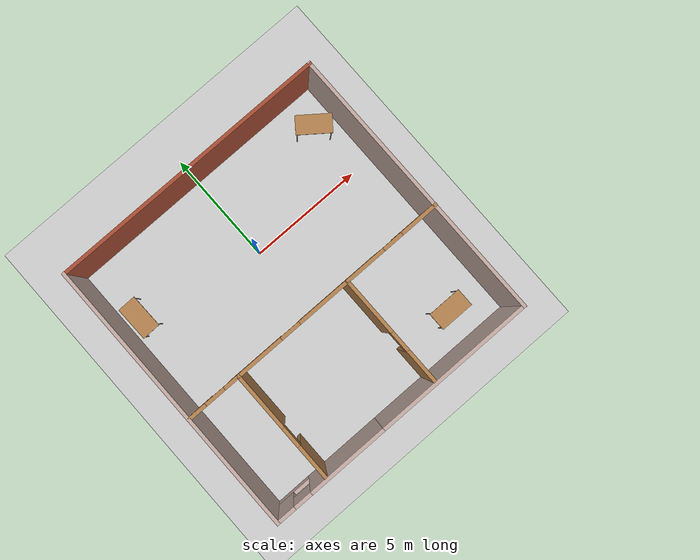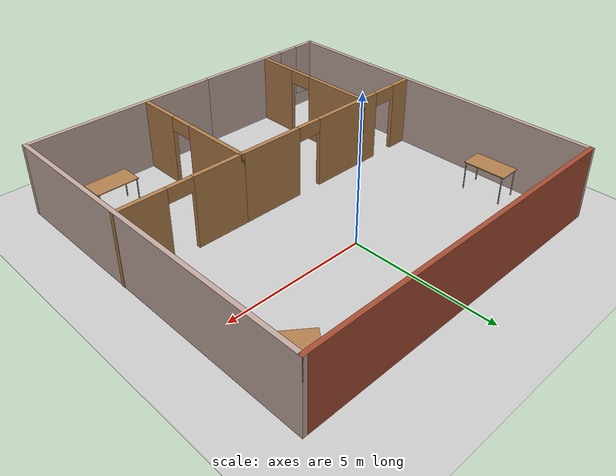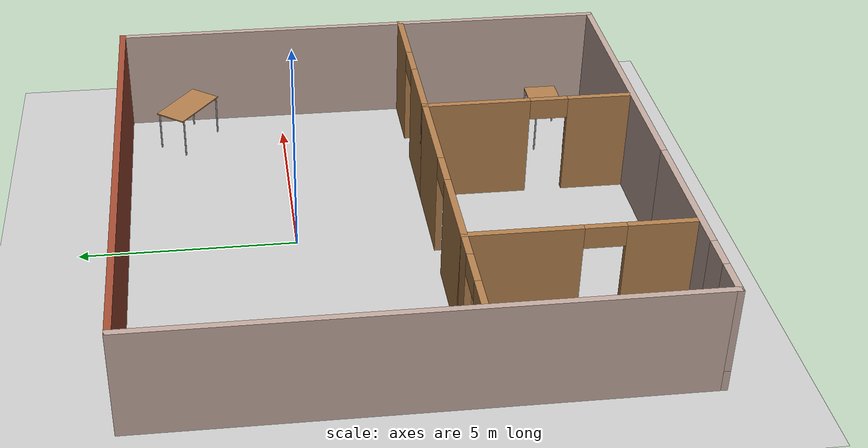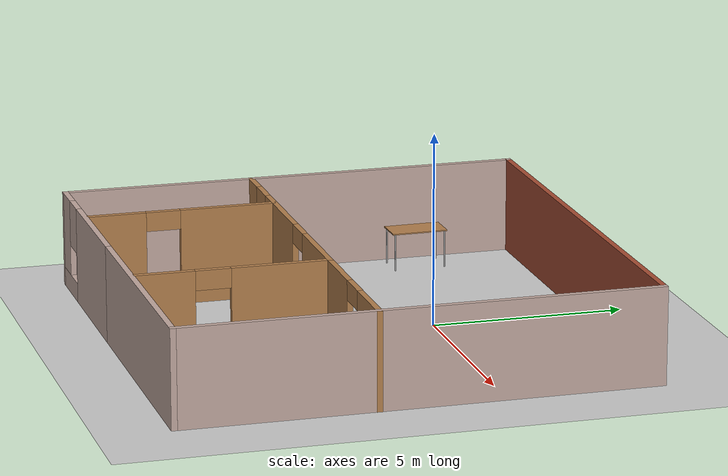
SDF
<sdf version="1.6">
 <world name="default">
  <plugin filename="libcollision_map_creator.so" name="collision_map_creator"/>
  <light name="sun" type="directional">
   <pose>0 0 10 0 -0 0</pose>
   <diffuse>0.8 0.8 0.8 1</diffuse>
   <specular>0.2 0.2 0.2 1</specular>
   <attenuation>
    <range>1000</range>
    <constant>0.9</constant>
    <linear>0.01</linear>
    <quadratic>0.001</quadratic>
   </attenuation>
   <direction>-0.5 0.1 -0.9</direction>
  </light>
  <model name="ground_plane">
   <static>1</static>
   <link name="link">
    <collision name="collision">
     <geometry><plane><normal>0 0 1</normal><size>100 100</size></plane></geometry>
     <surface><friction><ode><mu>100</mu><mu2>50</mu2></ode></friction></surface>
    </collision>
    <visual name="visual">
     <cast_shadows>0</cast_shadows>
     <geometry><plane><normal>0 0 1</normal><size>100 100</size></plane></geometry>
     <material>
      <script><uri>file://media/materials/scripts/gazebo.material</uri><name>Gazebo/Grey</name></script>
     </material>
    </visual>
   </link>
  </model>
  <gravity>0 0 -9.8</gravity>
  <magnetic_field>6e-06 2.3e-05 -4.2e-05</magnetic_field>
  <atmosphere type="adiabatic"/>
  <physics name="default_physics" default="0" type="ode">
   <max_step_size>0.001</max_step_size>
   <real_time_factor>1</real_time_factor>
   <real_time_update_rate>1000</real_time_update_rate>
  </physics>
  <scene><ambient>0.4 0.4 0.4 1</ambient><background>0.7 0.7 0.7 1</background><shadows>1</shadows></scene>
  <spherical_coordinates>
   <surface_model>EARTH_WGS84</surface_model>
   <latitude_deg>0</latitude_deg>
   <longitude_deg>0</longitude_deg>
   <elevation>0</elevation>
   <heading_deg>0</heading_deg>
  </spherical_coordinates>
  <model name="World">
   <pose>0.005201 -2.11916 0 0 -0 0</pose>
   <link name="Wall_10">
    <pose>-4.81862 -1.0667 0 0 -0 0</pose>
    <visual name="Wall_10_Visual_0">
     <pose>-0.830666 0 1.25 0 -0 0</pose>
     <geometry><box><size>0.838667 0.15 2.5</size></box></geometry>
     <material>
      <script><uri>file://media/materials/scripts/gazebo.material</uri><name>Gazebo/Wood</name></script>
      <ambient>0.760784 0.662745 0.627451 1</ambient>
     </material>
     <meta><layer>0</layer></meta>
    </visual>
    <collision name="Wall_10_Collision_0">
     <geometry><box><size>0.838667 0.15 2.5</size></box></geometry>
     <pose>-0.830666 0 1.25 0 -0 0</pose>
    </collision>
    <visual name="Wall_10_Visual_1">
     <pose>0.869334 0 1.25 0 -0 0</pose>
     <geometry><box><size>0.761333 0.15 2.5</size></box></geometry>
     <material>
      <script><uri>file://media/materials/scripts/gazebo.material</uri><name>Gazebo/Wood</name></script>
      <ambient>0.760784 0.662745 0.627451 1</ambient>
     </material>
     <meta><layer>0</layer></meta>
    </visual>
    <collision name="Wall_10_Collision_1">
     <geometry><box><size>0.761333 0.15 2.5</size></box></geometry>
     <pose>0.869334 0 1.25 0 -0 0</pose>
    </collision>
    <visual name="Wall_10_Visual_2">
     <pose>0.038667 0 2.25 0 -0 0</pose>
     <geometry><box><size>0.9 0.15 0.5</size></box></geometry>
     <material>
      <script><uri>file://media/materials/scripts/gazebo.material</uri><name>Gazebo/Wood</name></script>
      <ambient>0.760784 0.662745 0.627451 1</ambient>
     </material>
     <meta><layer>0</layer></meta>
    </visual>
    <collision name="Wall_10_Collision_2">
     <geometry><box><size>0.9 0.15 0.5</size></box></geometry>
     <pose>0.038667 0 2.25 0 -0 0</pose>
    </collision>
   </link>
   <link name="Wall_11">
    <pose>-3.64362 -3.4917 0 0 0 -1.5708</pose>
    <visual name="Wall_11_Visual_0">
     <pose>-1.21087 0 1.25 0 -0 0</pose>
     <geometry><box><size>2.57826 0.15 2.5</size></box></geometry>
     <material>
      <script><uri>file://media/materials/scripts/gazebo.material</uri><name>Gazebo/Wood</name></script>
      <ambient>0.760784 0.662745 0.627451 1</ambient>
     </material>
     <meta><layer>0</layer></meta>
    </visual>
    <collision name="Wall_11_Collision_0">
     <geometry><box><size>2.57826 0.15 2.5</size></box></geometry>
     <pose>-1.21087 0 1.25 0 -0 0</pose>
    </collision>
    <visual name="Wall_11_Visual_1">
     <pose>1.73913 0 1.25 0 -0 0</pose>
     <geometry><box><size>1.52174 0.15 2.5</size></box></geometry>
     <material>
      <script><uri>file://media/materials/scripts/gazebo.material</uri><name>Gazebo/Wood</name></script>
      <ambient>0.760784 0.662745 0.627451 1</ambient>
     </material>
     <meta><layer>0</layer></meta>
    </visual>
    <collision name="Wall_11_Collision_1">
     <geometry><box><size>1.52174 0.15 2.5</size></box></geometry>
     <pose>1.73913 0 1.25 0 -0 0</pose>
    </collision>
    <visual name="Wall_11_Visual_2">
     <pose>0.528257 0 2.25 0 -0 0</pose>
     <geometry><box><size>0.9 0.15 0.5</size></box></geometry>
     <material>
      <script><uri>file://media/materials/scripts/gazebo.material</uri><name>Gazebo/Wood</name></script>
      <ambient>0.760784 0.662745 0.627451 1</ambient>
     </material>
     <meta><layer>0</layer></meta>
    </visual>
    <collision name="Wall_11_Collision_2">
     <geometry><box><size>0.9 0.15 0.5</size></box></geometry>
     <pose>0.528257 0 2.25 0 -0 0</pose>
    </collision>
   </link>
   <link name="Wall_13">
    <pose>-0.968622 -1.0667 0 0 -0 0</pose>
    <visual name="Wall_13_Visual_0">
     <pose>-1.66494 0 1.25 0 -0 0</pose>
     <geometry><box><size>2.17013 0.15 2.5</size></box></geometry>
     <material>
      <script><uri>file://media/materials/scripts/gazebo.material</uri><name>Gazebo/Wood</name></script>
      <ambient>0.760784 0.662745 0.627451 1</ambient>
     </material>
     <meta><layer>0</layer></meta>
    </visual>
    <collision name="Wall_13_Collision_0">
     <geometry><box><size>2.17013 0.15 2.5</size></box></geometry>
     <pose>-1.66494 0 1.25 0 -0 0</pose>
    </collision>
    <visual name="Wall_13_Visual_1">
     <pose>1.53506 0 1.25 0 -0 0</pose>
     <geometry><box><size>2.42988 0.15 2.5</size></box></geometry>
     <material>
      <script><uri>file://media/materials/scripts/gazebo.material</uri><name>Gazebo/Wood</name></script>
      <ambient>0.760784 0.662745 0.627451 1</ambient>
     </material>
     <meta><layer>0</layer></meta>
    </visual>
    <collision name="Wall_13_Collision_1">
     <geometry><box><size>2.42988 0.15 2.5</size></box></geometry>
     <pose>1.53506 0 1.25 0 -0 0</pose>
    </collision>
    <visual name="Wall_13_Visual_2">
     <pose>-0.129875 0 2.25 0 -0 0</pose>
     <geometry><box><size>0.9 0.15 0.5</size></box></geometry>
     <material>
      <script><uri>file://media/materials/scripts/gazebo.material</uri><name>Gazebo/Wood</name></script>
      <ambient>0.760784 0.662745 0.627451 1</ambient>
     </material>
     <meta><layer>0</layer></meta>
    </visual>
    <collision name="Wall_13_Collision_2">
     <geometry><box><size>0.9 0.15 0.5</size></box></geometry>
     <pose>-0.129875 0 2.25 0 -0 0</pose>
    </collision>
   </link>
   <link name="Wall_14">
    <pose>1.70638 -3.4917 0 0 0 -1.5708</pose>
    <visual name="Wall_14_Visual_0">
     <pose>-1.21087 0 1.25 0 -0 0</pose>
     <geometry><box><size>2.57826 0.15 2.5</size></box></geometry>
     <material>
      <script><uri>file://media/materials/scripts/gazebo.material</uri><name>Gazebo/Wood</name></script>
      <ambient>0.760784 0.662745 0.627451 1</ambient>
     </material>
     <meta><layer>0</layer></meta>
    </visual>
    <collision name="Wall_14_Collision_0">
     <geometry><box><size>2.57826 0.15 2.5</size></box></geometry>
     <pose>-1.21087 0 1.25 0 -0 0</pose>
    </collision>
    <visual name="Wall_14_Visual_1">
     <pose>1.73913 0 1.25 0 -0 0</pose>
     <geometry><box><size>1.52174 0.15 2.5</size></box></geometry>
     <material>
      <script><uri>file://media/materials/scripts/gazebo.material</uri><name>Gazebo/Wood</name></script>
      <ambient>0.760784 0.662745 0.627451 1</ambient>
     </material>
     <meta><layer>0</layer></meta>
    </visual>
    <collision name="Wall_14_Collision_1">
     <geometry><box><size>1.52174 0.15 2.5</size></box></geometry>
     <pose>1.73913 0 1.25 0 -0 0</pose>
    </collision>
    <visual name="Wall_14_Visual_2">
     <pose>0.528257 0 2.25 0 -0 0</pose>
     <geometry><box><size>0.9 0.15 0.5</size></box></geometry>
     <material>
      <script><uri>file://media/materials/scripts/gazebo.material</uri><name>Gazebo/Wood</name></script>
      <ambient>0.760784 0.662745 0.627451 1</ambient>
     </material>
     <meta><layer>0</layer></meta>
    </visual>
    <collision name="Wall_14_Collision_2">
     <geometry><box><size>0.9 0.15 0.5</size></box></geometry>
     <pose>0.528257 0 2.25 0 -0 0</pose>
    </collision>
   </link>
   <link name="Wall_16">
    <pose>3.88138 -1.0667 0 0 -0 0</pose>
    <visual name="Wall_16_Visual_0">
     <pose>-1.31146 0 1.25 0 -0 0</pose>
     <geometry><box><size>1.87707 0.15 2.5</size></box></geometry>
     <material>
      <script><uri>file://media/materials/scripts/gazebo.material</uri><name>Gazebo/Wood</name></script>
      <ambient>0.760784 0.662745 0.627451 1</ambient>
     </material>
     <meta><layer>0</layer></meta>
    </visual>
    <collision name="Wall_16_Collision_0">
     <geometry><box><size>1.87707 0.15 2.5</size></box></geometry>
     <pose>-1.31146 0 1.25 0 -0 0</pose>
    </collision>
    <visual name="Wall_16_Visual_1">
     <pose>1.38854 0 1.25 0 -0 0</pose>
     <geometry><box><size>1.72293 0.15 2.5</size></box></geometry>
     <material>
      <script><uri>file://media/materials/scripts/gazebo.material</uri><name>Gazebo/Wood</name></script>
      <ambient>0.760784 0.662745 0.627451 1</ambient>
     </material>
     <meta><layer>0</layer></meta>
    </visual>
    <collision name="Wall_16_Collision_1">
     <geometry><box><size>1.72293 0.15 2.5</size></box></geometry>
     <pose>1.38854 0 1.25 0 -0 0</pose>
    </collision>
    <visual name="Wall_16_Visual_2">
     <pose>0.077072 0 2.25 0 -0 0</pose>
     <geometry><box><size>0.9 0.15 0.5</size></box></geometry>
     <material>
      <script><uri>file://media/materials/scripts/gazebo.material</uri><name>Gazebo/Wood</name></script>
      <ambient>0.760784 0.662745 0.627451 1</ambient>
     </material>
     <meta><layer>0</layer></meta>
    </visual>
    <collision name="Wall_16_Collision_2">
     <geometry><box><size>0.9 0.15 0.5</size></box></geometry>
     <pose>0.077072 0 2.25 0 -0 0</pose>
    </collision>
   </link>
   <link name="Wall_4">
    <pose>-3.50638 -6.05 0 0 -0 3.14159</pose>
    <visual name="Wall_4_Visual_0">
     <pose>-0.855483 0 1.25 0 -0 0</pose>
     <geometry><box><size>3.53903 0.15 2.5</size></box></geometry>
     <material>
      <script><uri>file://media/materials/scripts/gazebo.material</uri><name>Gazebo/Grey</name></script>
      <ambient>0.760784 0.662745 0.627451 1</ambient>
     </material>
     <meta><layer>0</layer></meta>
    </visual>
    <collision name="Wall_4_Collision_0">
     <geometry><box><size>3.53903 0.15 2.5</size></box></geometry>
     <pose>-0.855483 0 1.25 0 -0 0</pose>
    </collision>
    <visual name="Wall_4_Visual_1">
     <pose>1.76952 0 0.25 0 -0 0</pose>
     <geometry><box><size>1.71097 0.15 0.5</size></box></geometry>
     <material>
      <script><uri>file://media/materials/scripts/gazebo.material</uri><name>Gazebo/Grey</name></script>
      <ambient>0.760784 0.662745 0.627451 1</ambient>
     </material>
     <meta><layer>0</layer></meta>
    </visual>
    <collision name="Wall_4_Collision_1">
     <geometry><box><size>1.71097 0.15 0.5</size></box></geometry>
     <pose>1.76952 0 0.25 0 -0 0</pose>
    </collision>
    <visual name="Wall_4_Visual_2">
     <pose>2.16952 0 1.5 0 -0 0</pose>
     <geometry><box><size>0.910967 0.15 2</size></box></geometry>
     <material>
      <script><uri>file://media/materials/scripts/gazebo.material</uri><name>Gazebo/Grey</name></script>
      <ambient>0.760784 0.662745 0.627451 1</ambient>
     </material>
     <meta><layer>0</layer></meta>
    </visual>
    <collision name="Wall_4_Collision_2">
     <geometry><box><size>0.910967 0.15 2</size></box></geometry>
     <pose>2.16952 0 1.5 0 -0 0</pose>
    </collision>
    <visual name="Wall_4_Visual_3">
     <pose>1.31403 0 1.9 0 -0 0</pose>
     <geometry><box><size>0.8 0.15 1.2</size></box></geometry>
     <material>
      <script><uri>file://media/materials/scripts/gazebo.material</uri><name>Gazebo/Grey</name></script>
      <ambient>0.760784 0.662745 0.627451 1</ambient>
     </material>
     <meta><layer>0</layer></meta>
    </visual>
    <collision name="Wall_4_Collision_3">
     <geometry><box><size>0.8 0.15 1.2</size></box></geometry>
     <pose>1.31403 0 1.9 0 -0 0</pose>
    </collision>
   </link>
   <link name="Wall_5">
    <collision name="Wall_5_Collision">
     <geometry><box><size>12.25 0.15 2.5</size></box></geometry>
     <pose>0 0 1.25 0 -0 0</pose>
    </collision>
    <visual name="Wall_5_Visual">
     <pose>0 0 1.25 0 -0 0</pose>
     <geometry><box><size>12.25 0.15 2.5</size></box></geometry>
     <material>
      <script><uri>file://media/materials/scripts/gazebo.material</uri><name>Gazebo/Grey</name></script>
      <ambient>0.760784 0.662745 0.627451 1</ambient>
     </material>
     <meta><layer>0</layer></meta>
    </visual>
    <pose>-6.05638 0 0 0 -0 1.5708</pose>
   </link>
   <link name="Wall_6">
    <collision name="Wall_6_Collision">
     <geometry><box><size>12.25 0.15 2.5</size></box></geometry>
     <pose>0 0 1.25 0 -0 0</pose>
    </collision>
    <visual name="Wall_6_Visual">
     <pose>0 0 1.25 0 -0 0</pose>
     <geometry><box><size>12.25 0.15 2.5</size></box></geometry>
     <material>
      <script><uri>file://media/materials/scripts/gazebo.material</uri><name>Gazebo/Bricks</name></script>
      <ambient>0.760784 0.662745 0.627451 1</ambient>
     </material>
     <meta><layer>0</layer></meta>
    </visual>
    <pose>-0.006377 6.05 0 0 -0 0</pose>
   </link>
   <link name="Wall_7">
    <collision name="Wall_7_Collision">
     <geometry><box><size>12.25 0.15 2.5</size></box></geometry>
     <pose>0 0 1.25 0 -0 0</pose>
    </collision>
    <visual name="Wall_7_Visual">
     <pose>0 0 1.25 0 -0 0</pose>
     <geometry><box><size>12.25 0.15 2.5</size></box></geometry>
     <material>
      <script><uri>file://media/materials/scripts/gazebo.material</uri><name>Gazebo/Grey</name></script>
      <ambient>0.760784 0.662745 0.627451 1</ambient>
     </material>
     <meta><layer>0</layer></meta>
    </visual>
    <pose>6.04362 0 0 0 0 -1.5708</pose>
   </link>
   <link name="Wall_8">
    <collision name="Wall_8_Collision">
     <geometry><box><size>7 0.15 2.5</size></box></geometry>
     <pose>0 0 1.25 0 -0 0</pose>
    </collision>
    <visual name="Wall_8_Visual">
     <pose>0 0 1.25 0 -0 0</pose>
     <geometry><box><size>7 0.15 2.5</size></box></geometry>
     <material>
      <script><uri>file://media/materials/scripts/gazebo.material</uri><name>Gazebo/Grey</name></script>
      <ambient>0.760784 0.662745 0.627451 1</ambient>
     </material>
     <meta><layer>0</layer></meta>
    </visual>
    <pose>2.61862 -6.05 0 0 -0 3.14159</pose>
   </link>
   <static>1</static>
  </model>
  <model name="table">
   <static>1</static>
   <link name="link">
    <collision name="surface">
     <pose>0 0 1 0 -0 0</pose>
     <geometry><box><size>1.5 0.8 0.03</size></box></geometry>
     <surface><friction><ode><mu>0.6</mu><mu2>0.6</mu2></ode></friction></surface>
    </collision>
    <visual name="visual1">
     <pose>0 0 1 0 -0 0</pose>
     <geometry><box><size>1.5 0.8 0.03</size></box></geometry>
     <material>
      <script><uri>file://media/materials/scripts/gazebo.material</uri><name>Gazebo/Wood</name></script>
     </material>
    </visual>
    <collision name="front_left_leg">
     <pose>0.68 0.38 0.5 0 -0 0</pose>
     <geometry><cylinder><radius>0.02</radius><length>1</length></cylinder></geometry>
    </collision>
    <visual name="front_left_leg">
     <pose>0.68 0.38 0.5 0 -0 0</pose>
     <geometry><cylinder><radius>0.02</radius><length>1</length></cylinder></geometry>
     <material>
      <script><uri>file://media/materials/scripts/gazebo.material</uri><name>Gazebo/Grey</name></script>
     </material>
    </visual>
    <collision name="front_right_leg">
     <pose>0.68 -0.38 0.5 0 -0 0</pose>
     <geometry><cylinder><radius>0.02</radius><length>1</length></cylinder></geometry>
    </collision>
    <visual name="front_right_leg">
     <pose>0.68 -0.38 0.5 0 -0 0</pose>
     <geometry><cylinder><radius>0.02</radius><length>1</length></cylinder></geometry>
     <material>
      <script><uri>file://media/materials/scripts/gazebo.material</uri><name>Gazebo/Grey</name></script>
     </material>
    </visual>
    <collision name="back_right_leg">
     <pose>-0.68 -0.38 0.5 0 -0 0</pose>
     <geometry><cylinder><radius>0.02</radius><length>1</length></cylinder></geometry>
    </collision>
    <visual name="back_right_leg">
     <pose>-0.68 -0.38 0.5 0 -0 0</pose>
     <geometry><cylinder><radius>0.02</radius><length>1</length></cylinder></geometry>
     <material>
      <script><uri>file://media/materials/scripts/gazebo.material</uri><name>Gazebo/Grey</name></script>
     </material>
    </visual>
    <collision name="back_left_leg">
     <pose>-0.68 0.38 0.5 0 -0 0</pose>
     <geometry><cylinder><radius>0.02</radius><length>1</length></cylinder></geometry>
    </collision>
    <visual name="back_left_leg">
     <pose>-0.68 0.38 0.5 0 -0 0</pose>
     <geometry><cylinder><radius>0.02</radius><length>1</length></cylinder></geometry>
     <material>
      <script><uri>file://media/materials/scripts/gazebo.material</uri><name>Gazebo/Grey</name></script>
     </material>
    </visual>
   </link>
   <pose>4.18824 -6.70433 0 0 -0 0</pose>
  </model>
  <model name="table_0">
   <static>1</static>
   <link name="link">
    <collision name="surface">
     <pose>0 0 1 0 -0 0</pose>
     <geometry><box><size>1.5 0.8 0.03</size></box></geometry>
     <surface><friction><ode><mu>0.6</mu><mu2>0.6</mu2></ode></friction></surface>
    </collision>
    <visual name="visual1">
     <pose>0 0 1 0 -0 0</pose>
     <geometry><box><size>1.5 0.8 0.03</size></box></geometry>
     <material>
      <script><uri>file://media/materials/scripts/gazebo.material</uri><name>Gazebo/Wood</name></script>
     </material>
    </visual>
    <collision name="front_left_leg">
     <pose>0.68 0.38 0.5 0 -0 0</pose>
     <geometry><cylinder><radius>0.02</radius><length>1</length></cylinder></geometry>
    </collision>
    <visual name="front_left_leg">
     <pose>0.68 0.38 0.5 0 -0 0</pose>
     <geometry><cylinder><radius>0.02</radius><length>1</length></cylinder></geometry>
     <material>
      <script><uri>file://media/materials/scripts/gazebo.material</uri><name>Gazebo/Grey</name></script>
     </material>
    </visual>
    <collision name="front_right_leg">
     <pose>0.68 -0.38 0.5 0 -0 0</pose>
     <geometry><cylinder><radius>0.02</radius><length>1</length></cylinder></geometry>
    </collision>
    <visual name="front_right_leg">
     <pose>0.68 -0.38 0.5 0 -0 0</pose>
     <geometry><cylinder><radius>0.02</radius><length>1</length></cylinder></geometry>
     <material>
      <script><uri>file://media/materials/scripts/gazebo.material</uri><name>Gazebo/Grey</name></script>
     </material>
    </visual>
    <collision name="back_right_leg">
     <pose>-0.68 -0.38 0.5 0 -0 0</pose>
     <geometry><cylinder><radius>0.02</radius><length>1</length></cylinder></geometry>
    </collision>
    <visual name="back_right_leg">
     <pose>-0.68 -0.38 0.5 0 -0 0</pose>
     <geometry><cylinder><radius>0.02</radius><length>1</length></cylinder></geometry>
     <material>
      <script><uri>file://media/materials/scripts/gazebo.material</uri><name>Gazebo/Grey</name></script>
     </material>
    </visual>
    <collision name="back_left_leg">
     <pose>-0.68 0.38 0.5 0 -0 0</pose>
     <geometry><cylinder><radius>0.02</radius><length>1</length></cylinder></geometry>
    </collision>
    <visual name="back_left_leg">
     <pose>-0.68 0.38 0.5 0 -0 0</pose>
     <geometry><cylinder><radius>0.02</radius><length>1</length></cylinder></geometry>
     <material>
      <script><uri>file://media/materials/scripts/gazebo.material</uri><name>Gazebo/Grey</name></script>
     </material>
    </visual>
   </link>
   <pose>4.98186 2.39371 0 0 0 -0.651913</pose>
  </model>
  <model name="table_1">
   <static>1</static>
   <link name="link">
    <collision name="surface">
     <pose>0 0 1 0 -0 0</pose>
     <geometry><box><size>1.5 0.8 0.03</size></box></geometry>
     <surface><friction><ode><mu>0.6</mu><mu2>0.6</mu2></ode></friction></surface>
    </collision>
    <visual name="visual1">
     <pose>0 0 1 0 -0 0</pose>
     <geometry><box><size>1.5 0.8 0.03</size></box></geometry>
     <material>
      <script><uri>file://media/materials/scripts/gazebo.material</uri><name>Gazebo/Wood</name></script>
     </material>
    </visual>
    <collision name="front_left_leg">
     <pose>0.68 0.38 0.5 0 -0 0</pose>
     <geometry><cylinder><radius>0.02</radius><length>1</length></cylinder></geometry>
    </collision>
    <visual name="front_left_leg">
     <pose>0.68 0.38 0.5 0 -0 0</pose>
     <geometry><cylinder><radius>0.02</radius><length>1</length></cylinder></geometry>
     <material>
      <script><uri>file://media/materials/scripts/gazebo.material</uri><name>Gazebo/Grey</name></script>
     </material>
    </visual>
    <collision name="front_right_leg">
     <pose>0.68 -0.38 0.5 0 -0 0</pose>
     <geometry><cylinder><radius>0.02</radius><length>1</length></cylinder></geometry>
    </collision>
    <visual name="front_right_leg">
     <pose>0.68 -0.38 0.5 0 -0 0</pose>
     <geometry><cylinder><radius>0.02</radius><length>1</length></cylinder></geometry>
     <material>
      <script><uri>file://media/materials/scripts/gazebo.material</uri><name>Gazebo/Grey</name></script>
     </material>
    </visual>
    <collision name="back_right_leg">
     <pose>-0.68 -0.38 0.5 0 -0 0</pose>
     <geometry><cylinder><radius>0.02</radius><length>1</length></cylinder></geometry>
    </collision>
    <visual name="back_right_leg">
     <pose>-0.68 -0.38 0.5 0 -0 0</pose>
     <geometry><cylinder><radius>0.02</radius><length>1</length></cylinder></geometry>
     <material>
      <script><uri>file://media/materials/scripts/gazebo.material</uri><name>Gazebo/Grey</name></script>
     </material>
    </visual>
    <collision name="back_left_leg">
     <pose>-0.68 0.38 0.5 0 -0 0</pose>
     <geometry><cylinder><radius>0.02</radius><length>1</length></cylinder></geometry>
    </collision>
    <visual name="back_left_leg">
     <pose>-0.68 0.38 0.5 0 -0 0</pose>
     <geometry><cylinder><radius>0.02</radius><length>1</length></cylinder></geometry>
     <material>
      <script><uri>file://media/materials/scripts/gazebo.material</uri><name>Gazebo/Grey</name></script>
     </material>
    </visual>
   </link>
   <pose>-5.26601 1.11101 0 0 0 -1.55371</pose>
  </model>
 </world>
</sdf>
